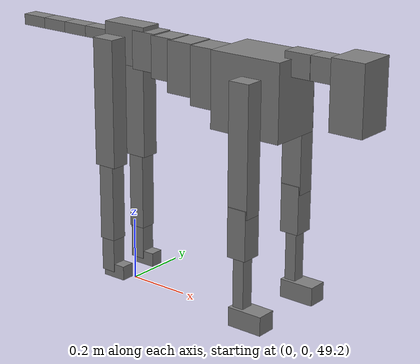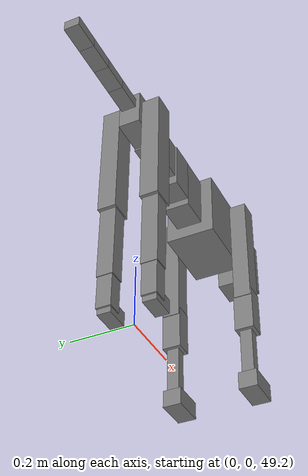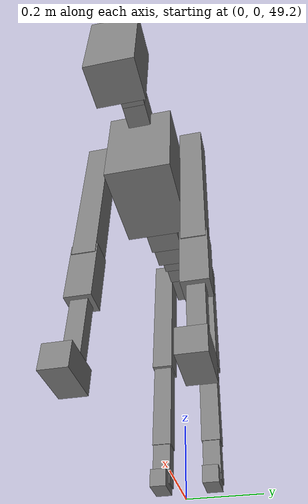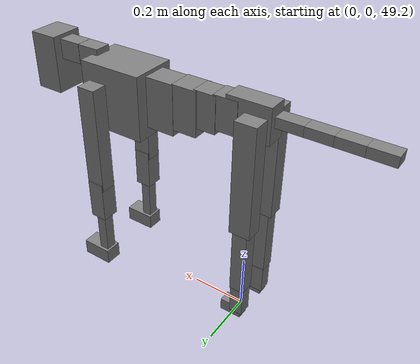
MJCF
<mujoco model="dog">

    <default>
        <joint armature="0.02" stiffness="1" damping="0.2" limited="true"/>
        <geom condim="3" friction="1 0.05 0.05" margin="0.01"/>
        <motor ctrllimited="true" ctrlrange="-1.0 1.0" forcelimited="true" gear="50"/>
    </default>

    <compiler inertiafromgeom="true" angle="radian"/>

    <option timestep="0.016" iterations="50" tolerance="1e-10" solver="Newton" jacobian="dense" cone="pyramidal"/>

    <size nconmax="20000" njmax="60000" nstack="5000000"/>
    <visual>
        <map force="0.1" zfar="30"/>
        <rgba haze="0.15 0.25 0.35 1"/>
        <quality shadowsize="2048"/>
        <global offwidth="800" offheight="800"/>
    </visual>

    <asset>
        <texture type="skybox" builtin="gradient" rgb1="0.3 0.5 0.7" rgb2="0 0 0" width="512" height="512"/>
        <texture name="texplane" type="2d" builtin="checker" rgb1=".2 .3 .4" rgb2=".1 0.15 0.2" width="512" height="512"
                 mark="cross" markrgb=".8 .8 .8"/>
        <texture name="texgeom" type="cube" builtin="flat" mark="cross" width="127" height="1278" rgb1="0.8 0.6 0.4"
                 rgb2="0.8 0.6 0.4" markrgb="1 1 1" random="0.01"/>

        <material name="matplane" reflectance="0.3" texture="texplane" texrepeat="1 1" texuniform="true"/>
        <material name="matgeom" texture="texgeom" texuniform="true" rgba="0.8 0.6 .4 1"/>
    </asset>

    <worldbody>
        <geom name="floor" pos="0 0 0" size="0 0 .25" type="plane" material="matplane" condim="3"/>

        <light directional="false" diffuse=".2 .2 .2" specular="0 0 0" pos="0 0 5" dir="0 0 -1" castshadow="false"/>
        <light mode="targetbodycom" target="torso" directional="false" diffuse=".8 .8 .8" specular="0.3 0.3 0.3"
               pos="0 0 4.0" dir="0 0 -1"/>

        <body name="root" pos="0 0 50">
            <freejoint name="root_1"/>
            <geom type="box" pos="0 0 -0.02" size="0.0774  0.0358  0.063" density="2030"/>

            <body name="spine1" pos="0.054 0 0">
                <joint name="spine1_y" axis="0 1 0" range="0 0.7" limited="true"/>
                <geom type="box" pos="0.02375 0 -0.03" size="0.04375  0.0375  0.05985" density="2030"/>

                <body name="spine2" pos="0.0612 0 0">
                    <joint name="spine2_y" axis="0 1 0" range="-0.15 0.15" limited="true"/>
                    <geom type="box" pos="0.03555  0  -0.04" size="0.04055  0.039  0.06615" density="2030"/>

                    <body name="spine3" pos="0.0730 0 0">
                        <joint name="spine3_y" axis="0 1 0" range="-0.15 0.15" limited="true"/>
                        <geom type="box" pos="0.03555  0  -0.057" size="0.04555  0.0445  0.081" density="2030"/>

                        <body name="spine4" pos="0.0780 0 0">
                            <joint name="spine4_y" axis="0 1 0" range="-0.15 0.15" limited="true"/>
                            <geom type="box" pos="0.05265  0  -0.07" size="0.05265  0.045  0.09135" density="2030"/>

                            <body name="torso" pos="0.1082 0 0">
                                <joint name="torso_y" axis="0 1 0" range="-0.15 0.15" limited="true"/>
                                <geom type="box" pos="0.11925  0  -0.085" size="0.11925  0.085  0.11745"
                                      density="2030"/>

                                <body name="neck1" pos="0.2160  0   0.0180">
                                    <joint name="neck1_y" axis="0 1 0" range="-1.2  -1" limited="true"/>
                                    <geom type="box" pos="0.0423  0  0" size="0.0423  0.03  0.036" density="2325"/>

                                    <body name="neck2" pos="0.0853  0  0">
                                        <joint name="neck2_y" axis="0 1 0" range="0.1  0" limited="true"/>
                                        <geom type="box" pos="0.0423  0  0" size="0.0423  0.03  0.036" density="2325"/>

                                        <body name="head" pos="0.0853  0  0">
                                            <joint name="head_y" axis="0 1 0" range="-0.3  -0.2" limited="true"/>
                                            <geom type="box" pos="0.0531  0  -0.055" size="0.0531  0.06  0.1044"
                                                  density="4030"/>

                                        </body>
                                    </body>
                                </body>

                                <body name="front_shoulder" pos="0.156  0   -0.0480">
                                    <joint name="front_shoulder_y" axis="0 1 0" range="-1 1.5" limited="true"/>
                                    <geom type="box" pos="0 0.13 -0.1706" size="0.0338  0.0289  0.1972" density="1158"/>
                                    <geom type="box" pos="0 -0.13 -0.1706" size="0.0338  0.0289  0.1972"
                                          density="1158"/>

                                    <body name="front_elbow" pos="0  0  -0.3412">
                                        <joint name="front_elbow_y" axis="0 1 0" range="-2 0" limited="true"/>
                                        <geom type="box" pos="0 0.13 -0.0763" size="0.0314  0.0321  0.0763"
                                              density="1081"/>
                                        <geom type="box" pos="0 -0.13 -0.0763" size="0.0314  0.0321  0.0763"
                                              density="1081"/>

                                        <body name="front_wrist" pos="0  0  -0.1525">
                                            <joint name="front_wrist_y" axis="0 1 0" range="-0.2 0" limited="true"/>
                                            <geom type="box" pos="0 0.13 -0.0855" size="0.0185  0.0205  0.0987"
                                                  density="1664"/>
                                            <geom type="box" pos="0 -0.13 -0.0855" size="0.0185  0.0205  0.0987"
                                                  density="1664"/>

                                            <body name="front_finger_end" pos="0  0  -0.1710">
                                                <joint name="front_finger_y" axis="0 1 0" range="-0.4 1"
                                                       limited="true"/>
                                                <geom type="box" pos="0.0313  0.13  -0.0143"
                                                      size="0.0573  0.0313  0.0293" density="1515"/>
                                                <geom type="box" pos="0.0313  -0.13  -0.0143"
                                                      size="0.0573  0.0313  0.0293" density="1515"/>

                                            </body>

                                        </body>
                                    </body>
                                </body>

                            </body>
                        </body>
                    </body>
                </body>
            </body>

            <body name="back_hip" pos="-0.03 0 -0.018">
                <joint name="back_hip_y" axis="0 1 0" range="-1.5 0.3" limited="true"/>
                <geom type="box" pos="0 0.07 -0.1800" size="0.0380  0.0298  0.2028" density="1154"/>
                <geom type="box" pos="0 -0.07 -0.1800" size="0.0380  0.0298  0.2028" density="1154"/>

                <body name="back_knee" pos="0  0  -0.3600">
                    <joint name="back_knee_y" axis="0 1 0" range="0 2.8" limited="true"/>
                    <geom type="box" pos="0 0.07 -0.1255" size="0.0267  0.0263  0.1410" density="1227"/>
                    <geom type="box" pos="0 -0.07 -0.1255" size="0.0267  0.0263  0.1410" density="1227"/>

                    <body name="back_ankle" pos="0  0  -0.2509">
                        <joint name="back_ankle_y" axis="0 1 0" range="-2.2 0" limited="true"/>
                        <geom type="box" pos="0 0.07 -0.0562" size="0.0241  0.0241  0.0675" density="1284"/>
                        <geom type="box" pos="0 -0.07 -0.0562" size="0.0241  0.0241  0.0675" density="1284"/>

                        <body name="back_toe_end" pos="0  0  -0.1125">
                            <joint name="back_toe_y" axis="0 1 0" range="-0.4 1" limited="true"/>
                            <geom type="box" pos="0.0216  0.07  -0.0076" size="0.0397  0.0216  0.0226" density="1515"/>
                            <geom type="box" pos="0.0216  -0.07  -0.0076" size="0.0397  0.0216  0.0226" density="1515"/>

                        </body>
                    </body>
                </body>
            </body>

            <body name="tail1" pos="-0.074 0 -0.006">
                <joint name="tail1_y" axis="0 1 0" range="-0.2 0.2" limited="true"/>
                <geom type="box" pos="-0.0536  0  0" size="0.045  0.025  0.0175" density="1587"/>

                <body name="tail2" pos="-0.09 0 0">
                    <joint name="tail2_y" axis="0 1 0" range="-0.2 0.2" limited="true"/>
                    <geom type="box" pos="-0.0536  0  0" size="0.045  0.025  0.0175" density="1587"/>

                    <body name="tail3" pos="-0.09 0 0">
                        <joint name="tail3_y" axis="0 1 0" range="-0.2 0.2" limited="true"/>
                        <geom type="box" pos="-0.0536  0  0" size="0.045  0.025  0.0175" density="1587"/>

                        <body name="tail4" pos="-0.09 0 0">
                            <joint name="tail4_y" axis="0 1 0" range="-0.2 0.2" limited="true"/>
                            <geom type="box" pos="-0.0536  0  0" size="0.045  0.025  0.0175" density="1587"/>

                        </body>
                    </body>
                </body>
            </body>
        </body>
    </worldbody>

    <actuator>
        <motor joint="spine1_y" forcerange="-150 150     "/>
        <motor joint="spine2_y" forcerange="-150 150     "/>
        <motor joint="spine3_y" forcerange="-150 150     "/>
        <motor joint="spine4_y" forcerange="-150 150     "/>
        <motor joint="torso_y" forcerange="-150 150     "/>
        <motor joint="neck1_y" forcerange="-100 100       "/>
        <motor joint="neck2_y" forcerange="-100 100       "/>
        <motor joint="head_y" forcerange="-150 150       "/>
        <motor joint="front_shoulder_y" forcerange="-133.58 158.78"/>
        <motor joint="front_elbow_y" forcerange="-136.62 196.49"/>
        <motor joint="front_wrist_y" forcerange="-93.30 70.90"/>
        <motor joint="front_finger_y" forcerange="-91.80 34.88"/>
        <motor joint="back_hip_y" forcerange="-221.55 375.81"/>
        <motor joint="back_knee_y" forcerange="-210.89 371.65"/>
        <motor joint="back_angle_y" forcerange="-149.88 136.11"/>
        <motor joint="back_toe_y" forcerange="-28.30 64.86"/>
        <motor joint="tail1_y" forcerange="-50 50     "/>
        <motor joint="tail2_y" forcerange="-50 50     "/>
        <motor joint="tail3_y" forcerange="-50 50     "/>
        <motor joint="tail4_y" forcerange="-50 50     "/>
    </actuator>
</mujoco>
